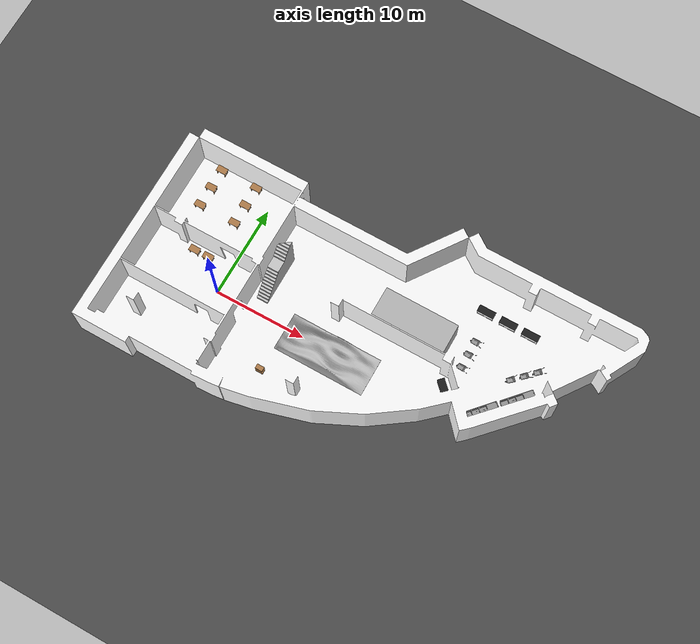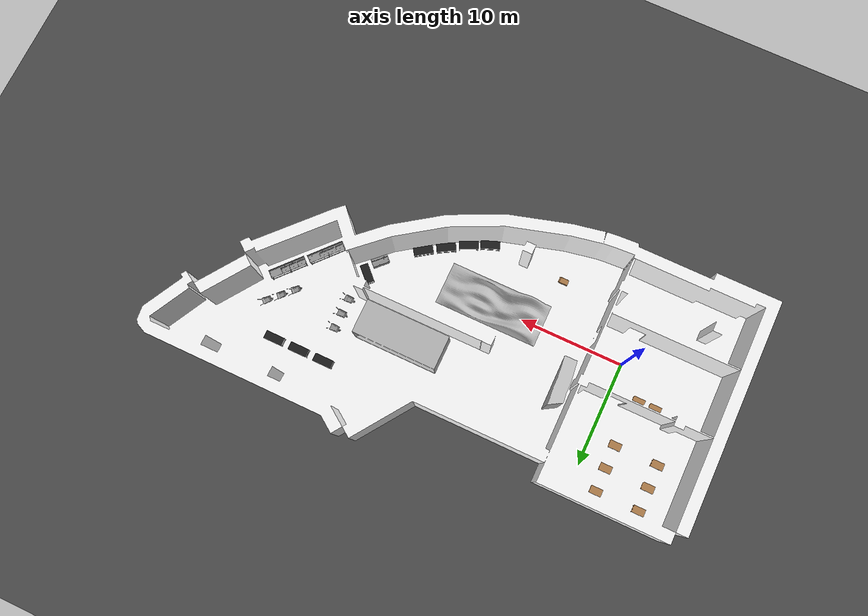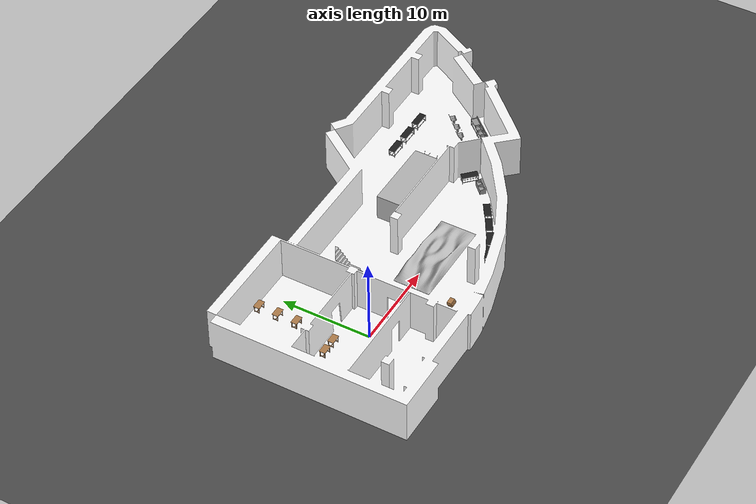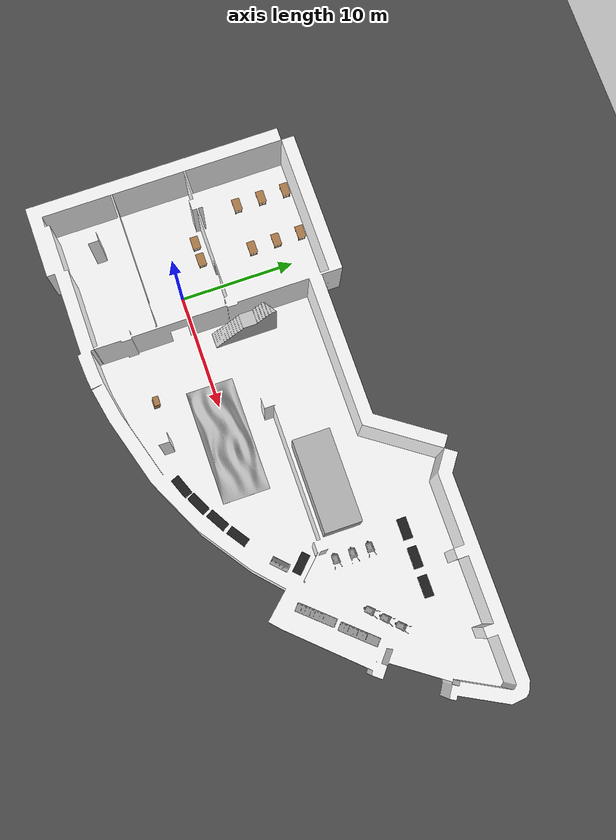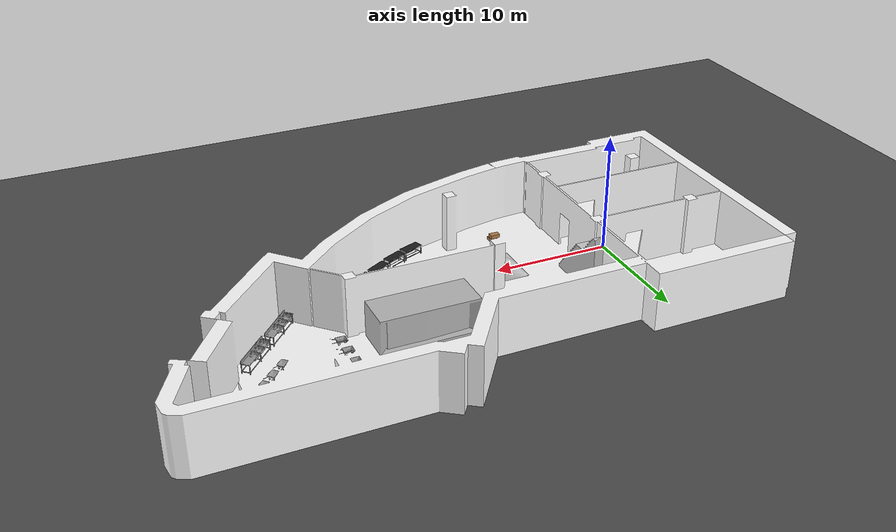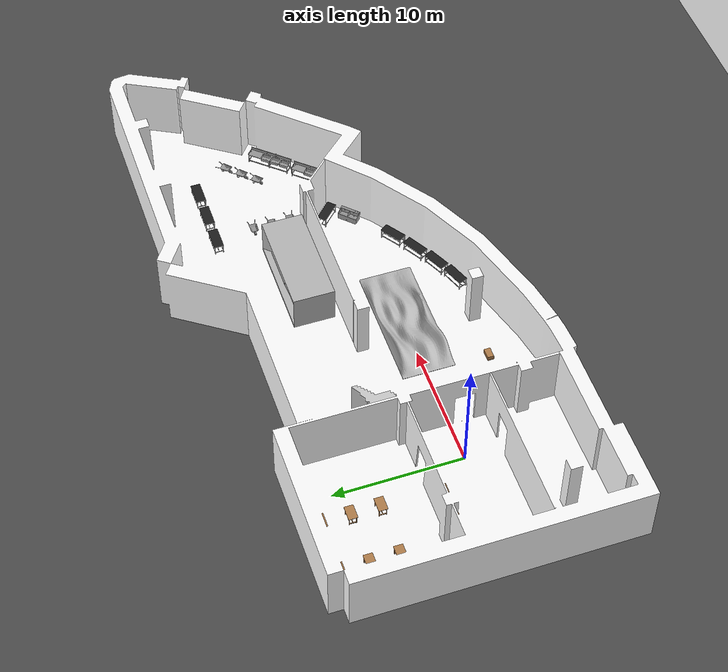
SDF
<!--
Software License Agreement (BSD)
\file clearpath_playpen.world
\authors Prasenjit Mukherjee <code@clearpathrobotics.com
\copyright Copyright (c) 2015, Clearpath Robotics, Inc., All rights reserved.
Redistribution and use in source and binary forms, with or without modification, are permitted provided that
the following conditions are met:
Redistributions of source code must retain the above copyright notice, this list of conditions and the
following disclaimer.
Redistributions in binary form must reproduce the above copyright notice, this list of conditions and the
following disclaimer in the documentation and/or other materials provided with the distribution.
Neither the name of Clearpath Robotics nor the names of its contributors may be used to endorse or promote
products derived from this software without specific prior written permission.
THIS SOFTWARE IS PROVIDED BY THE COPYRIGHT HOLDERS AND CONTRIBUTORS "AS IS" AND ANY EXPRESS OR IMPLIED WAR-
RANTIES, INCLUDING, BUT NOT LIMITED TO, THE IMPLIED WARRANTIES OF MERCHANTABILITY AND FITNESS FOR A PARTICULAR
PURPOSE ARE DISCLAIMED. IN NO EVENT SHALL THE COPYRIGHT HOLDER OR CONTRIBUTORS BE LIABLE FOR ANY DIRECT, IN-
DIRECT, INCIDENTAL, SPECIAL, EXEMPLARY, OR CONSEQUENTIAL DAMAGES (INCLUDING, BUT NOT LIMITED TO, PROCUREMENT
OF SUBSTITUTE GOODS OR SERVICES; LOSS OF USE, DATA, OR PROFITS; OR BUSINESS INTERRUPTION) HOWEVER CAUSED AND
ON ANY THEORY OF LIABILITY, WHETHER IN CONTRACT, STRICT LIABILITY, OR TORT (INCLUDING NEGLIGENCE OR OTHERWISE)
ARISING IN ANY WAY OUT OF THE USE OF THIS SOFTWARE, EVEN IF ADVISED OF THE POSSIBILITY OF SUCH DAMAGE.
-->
<sdf version="1.4">
 <world name="default">
  <light name="sun" type="directional">
   <pose>0 0 10 0 -0 0</pose>
   <diffuse>0.8 0.8 0.8 1</diffuse>
   <specular>0.2 0.2 0.2 1</specular>
   <attenuation>
    <range>10</range>
    <constant>0.9</constant>
    <linear>0.01</linear>
    <quadratic>0.001</quadratic>
   </attenuation>
   <direction>-0.5 0.1 -0.9</direction>
  </light>
  <model name="ground_plane">
   <static>1</static>
   <link name="link">
    <collision name="collision">
     <geometry><plane><normal>0 0 1</normal><size>100 100</size></plane></geometry>
     <surface><friction><ode><mu>100</mu><mu2>50</mu2></ode></friction></surface>
    </collision>
    <visual name="visual">
     <cast_shadows>0</cast_shadows>
     <geometry><plane><normal>0 0 1</normal><size>100 100</size></plane></geometry>
     <material>
      <script>
       <uri>model://asphalt_plane/materials/scripts</uri>
       <uri>model://asphalt_plane/materials/textures</uri>
       <name>vrc/asphalt</name>
      </script>
     </material>
    </visual>
    <velocity_decay><linear>0</linear><angular>0</angular></velocity_decay>
   </link>
  </model>
  <physics type="ode">
   <max_step_size>0.01</max_step_size>
   <real_time_factor>1</real_time_factor>
   <real_time_update_rate>100</real_time_update_rate>
   <gravity>0 0 -9.8</gravity>
  </physics>
  <scene><ambient>0.4 0.4 0.4 1</ambient><background>0.7 0.7 0.7 1</background><shadows>1</shadows></scene>
  <model name="stair">
   <include><static>true</static><uri>model://test_stair</uri><pose>3.8 1.4 0.05 0 0 -1.57</pose></include>
  </model>
  <model name="work_brench_01">
   <include><static>true</static><uri>model://work_brench</uri><pose>24 11.5 0.1 0 0 0</pose></include>
  </model>
  <model name="work_brench_02">
   <include><static>true</static><uri>model://work_brench</uri><pose>26.5 11.5 0.1 0 0 0</pose></include>
  </model>
  <model name="work_brench_03">
   <include><static>true</static><uri>model://work_brench</uri><pose>29 11.5 0.1 0 0 0</pose></include>
  </model>
  <model name="work_brench_04">
   <include><static>true</static><uri>model://work_brench</uri><pose>24.4 3 0.1 0 0 -0.78</pose></include>
  </model>
  <model name="work_brench_05">
   <include><static>true</static><uri>model://work_brench</uri><pose>20.13 -2.27 0.1 0 0 0.6</pose></include>
  </model>
  <model name="work_brench_06">
   <include><static>true</static><uri>model://work_brench</uri><pose>18.3 -3.37 0.1 0 0 0.52</pose></include>
  </model>
  <model name="work_brench_07">
   <include><static>true</static><uri>model://work_brench</uri><pose>16.47 -4.37 0.1 0 0 0.44</pose></include>
  </model>
  <model name="work_brench_08">
   <include><static>true</static><uri>model://work_brench</uri><pose>14.64 -5.17 0.1 0 0 0.36</pose></include>
  </model>
  <model name="wood_table_01">
   <include><static>true</static><uri>model://wood_table</uri><pose>-4.7 2.3 0.05 0 0 0</pose></include>
  </model>
  <model name="wood_table_02">
   <include><static>true</static><uri>model://wood_table</uri><pose>-3.1 2.3 0.05 0 0 0</pose></include>
  </model>
  <model name="wood_table_03">
   <include><static>true</static><uri>model://wood_table</uri><pose>-6.8 6.8 0.05 0 0 0</pose></include>
  </model>
  <model name="wood_table_04">
   <include><static>true</static><uri>model://wood_table</uri><pose>-6.8 9 0.05 0 0 0</pose></include>
  </model>
  <model name="wood_table_05">
   <include><static>true</static><uri>model://wood_table</uri><pose>-6.8 11.2 0.05 0 0 0</pose></include>
  </model>
  <model name="wood_table_06">
   <include><static>true</static><uri>model://wood_table</uri><pose>-2.7 6.8 0.05 0 0 0</pose></include>
  </model>
  <model name="wood_table_07">
   <include><static>true</static><uri>model://wood_table</uri><pose>-2.7 9 0.05 0 0 0</pose></include>
  </model>
  <model name="wood_table_08">
   <include><static>true</static><uri>model://wood_table</uri><pose>-2.7 11.2 0.05 0 0 0</pose></include>
  </model>
  <model name="wood_table_01">
   <include><static>true</static><uri>model://sink</uri><pose>30 3.4 0.1 0 0 -2.3</pose></include>
  </model>
  <model name="wood_table_02">
   <include><static>true</static><uri>model://sink</uri><pose>32.6 6.2 0.1 0 0 -2.3</pose></include>
  </model>
  <model name="sink_2">
   <include><static>true</static><uri>model://sink-2</uri><pose>24.6 1.3 0.05 0 0 -2.356</pose></include>
  </model>
  <model name="u005">
   <include><static>true</static><uri>model://u005</uri><pose>-10 -10 0.05 0 0 0</pose></include>
  </model>
  <model name="Wood_1">
   <include><static>true</static><uri>model://small_wood</uri><pose>8 -5 0.15 0 0 0</pose></include>
  </model>
  <model name="Wood_2">
   <include><static>true</static><uri>model://small_wood</uri><pose>7.9 -4.9 0.45 0 0 0</pose></include>
  </model>
  <model name="wheel_borrow_01">
   <include><static>true</static><uri>model://wheel_borrow</uri><pose>25 8 0.05 0 0 0</pose></include>
  </model>
  <model name="wheel_borrow_02">
   <include><static>true</static><uri>model://wheel_borrow</uri><pose>25 6.5 0.05 0 0 0</pose></include>
  </model>
  <model name="wheel_borrow_03">
   <include><static>true</static><uri>model://wheel_borrow</uri><pose>25 5 0.05 0 0 0</pose></include>
  </model>
  <model name="wheel_borrow_04">
   <include><static>true</static><uri>model://wheel_borrow</uri><pose>32 8 0.05 0 0 0.785</pose></include>
  </model>
  <model name="wheel_borrow_05">
   <include><static>true</static><uri>model://wheel_borrow</uri><pose>31 7 0.05 0 0 0.785</pose></include>
  </model>
  <model name="wheel_borrow_06">
   <include><static>true</static><uri>model://wheel_borrow</uri><pose>30 6 0.05 0 0 0.785</pose></include>
  </model>
  <model name="floor_feature">
   <include><static>true</static><uri>model://floor_feature</uri><pose>18 1.8 0.05 0 0 0</pose></include>
  </model>
  <model name="house">
   <include><static>true</static><uri>model://house</uri><pose>23.3 4.66 0.05 0 0 3.14</pose></include>
  </model>
 </world>
</sdf>

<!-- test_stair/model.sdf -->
<sdf version='1.6'>
  <model name='work_brench'>
<link name='link'>
      <self_collide>0</self_collide>
      <kinematic>0</kinematic>
      <visual name='link'>
        <geometry>
<mesh>
<uri>model://test_stair/meshes/test_stair.dae </uri>
<scale>1 1 1</scale>

</mesh>

        </geometry>

        <cast_shadows>1</cast_shadows>
        <transparency>0</transparency>
      </visual>
      <collision name='Wall_84_Collision'>
        <laser_retro>0</laser_retro>
        <max_contacts>10</max_contacts>
        <geometry>

<mesh>
<uri>model://test_stair/meshes/test_stair.dae </uri>
<scale>1 1 1</scale>
</mesh>

        </geometry>
        <surface>
          <friction>
            <ode>
              <mu>1</mu>
              <mu2>1</mu2>
              <fdir1>0 0 0</fdir1>
              <slip1>0</slip1>
              <slip2>0</slip2>
            </ode>
            <torsional>
              <coefficient>1</coefficient>
              <patch_radius>0</patch_radius>
              <surface_radius>0</surface_radius>
              <use_patch_radius>1</use_patch_radius>
              <ode>
                <slip>0</slip>
              </ode>
            </torsional>
          </friction>
          <bounce>
            <restitution_coefficient>0</restitution_coefficient>
            <threshold>1e+06</threshold>
          </bounce>
          <contact>
            <collide_without_contact>0</collide_without_contact>
            <collide_without_contact_bitmask>1</collide_without_contact_bitmask>
            <collide_bitmask>1</collide_bitmask>
            <ode>
              <soft_cfm>0</soft_cfm>
              <soft_erp>0.2</soft_erp>
              <kp>1e+13</kp>
              <kd>1</kd>
              <max_vel>0.01</max_vel>
              <min_depth>0</min_depth>
            </ode>
            <bullet><uri>model://stair/meshes/base_link.STL </uri>
<scale>1 1 1</scale>
              <split_impulse>1</split_impulse>
              <split_impulse_penetration_threshold>-0.01</split_impulse_penetration_threshold>
              <soft_cfm>0</soft_cfm>
              <soft_erp>0.2</soft_erp>
              <kp>1e+13</kp>
              <kd>1</kd>
            </bullet>
          </contact>
        </surface>
      </collision>
    </link>
</model>
</sdf>

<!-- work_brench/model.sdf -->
<sdf version='1.6'>
  <model name='work_brench'>
<link name='link'>
      <self_collide>0</self_collide>
      <kinematic>0</kinematic>
      <visual name='link'>
        <geometry>
<mesh>
<uri>model://work_brench/meshes/base_link.STL </uri>
<scale>1 1 1</scale>

</mesh>

        </geometry>
        <material>
          <script>

            <uri>file://media/materials/scripts/gazebo.material</uri>
            <name>Gazebo/Black</name>

          </script>

        </material>

        <cast_shadows>1</cast_shadows>
        <transparency>0</transparency>
      </visual>
      <collision name='Wall_84_Collision'>
        <laser_retro>0</laser_retro>
        <max_contacts>10</max_contacts>
        <geometry>

<mesh>
<uri>model://work_brench/meshes/base_link.STL </uri>
<scale>1 1 1</scale>
</mesh>

        </geometry>
        <surface>
          <friction>
            <ode>
              <mu>1</mu>
              <mu2>1</mu2>
              <fdir1>0 0 0</fdir1>
              <slip1>0</slip1>
              <slip2>0</slip2>
            </ode>
            <torsional>
              <coefficient>1</coefficient>
              <patch_radius>0</patch_radius>
              <surface_radius>0</surface_radius>
              <use_patch_radius>1</use_patch_radius>
              <ode>
                <slip>0</slip>
              </ode>
            </torsional>
          </friction>
          <bounce>
            <restitution_coefficient>0</restitution_coefficient>
            <threshold>1e+06</threshold>
          </bounce>
          <contact>
            <collide_without_contact>0</collide_without_contact>
            <collide_without_contact_bitmask>1</collide_without_contact_bitmask>
            <collide_bitmask>1</collide_bitmask>
            <ode>
              <soft_cfm>0</soft_cfm>
              <soft_erp>0.2</soft_erp>
              <kp>1e+13</kp>
              <kd>1</kd>
              <max_vel>0.01</max_vel>
              <min_depth>0</min_depth>
            </ode>
            <bullet><uri>model://stair/meshes/base_link.STL </uri>
<scale>1 1 1</scale>
              <split_impulse>1</split_impulse>
              <split_impulse_penetration_threshold>-0.01</split_impulse_penetration_threshold>
              <soft_cfm>0</soft_cfm>
              <soft_erp>0.2</soft_erp>
              <kp>1e+13</kp>
              <kd>1</kd>
            </bullet>
          </contact>
        </surface>
      </collision>
    </link>
</model>
</sdf>

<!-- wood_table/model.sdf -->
<sdf version='1.6'>
  <model name='wood_table'>
<link name='link'>
      <self_collide>0</self_collide>
      <kinematic>0</kinematic>
      <visual name='link'>
        <geometry>
<mesh>
<uri>model://wood_table/meshes/base_link.STL </uri>
<scale> 1 1 1 </scale>

</mesh>

        </geometry>
        <material>
          <script>

            <uri>file://media/materials/scripts/gazebo.material</uri>
            <name>Gazebo/Wood</name>

          </script>

        </material>
        <cast_shadows>1</cast_shadows>
        <transparency>0</transparency>
      </visual>
      <collision name='Wall_84_Collision'>
        <laser_retro>0</laser_retro>
        <max_contacts>10</max_contacts>
        <geometry>

<mesh>
<uri>model://wood_table/meshes/base_link.STL </uri>
<scale> 1 1 1 </scale>
</mesh>

        </geometry>
        <surface>
          <friction>
            <ode>
              <mu>1</mu>
              <mu2>1</mu2>
              <fdir1>0 0 0</fdir1>
              <slip1>0</slip1>
              <slip2>0</slip2>
            </ode>
            <torsional>
              <coefficient>1</coefficient>
              <patch_radius>0</patch_radius>
              <surface_radius>0</surface_radius>
              <use_patch_radius>1</use_patch_radius>
              <ode>
                <slip>0</slip>
              </ode>
            </torsional>
          </friction>
          <bounce>
            <restitution_coefficient>0</restitution_coefficient>
            <threshold>1e+06</threshold>
          </bounce>
          <contact>
            <collide_without_contact>0</collide_without_contact>
            <collide_without_contact_bitmask>1</collide_without_contact_bitmask>
            <collide_bitmask>1</collide_bitmask>
            <ode>
              <soft_cfm>0</soft_cfm>
              <soft_erp>0.2</soft_erp>
              <kp>1e+13</kp>
              <kd>1</kd>
              <max_vel>0.01</max_vel>
              <min_depth>0</min_depth>
            </ode>
            <bullet>
              <split_impulse>1</split_impulse>
              <split_impulse_penetration_threshold>-0.01</split_impulse_penetration_threshold>
              <soft_cfm>0</soft_cfm>
              <soft_erp>0.2</soft_erp>
              <kp>1e+13</kp>
              <kd>1</kd>
            </bullet>
          </contact>
        </surface>
      </collision>
    </link>
</model>
</sdf>

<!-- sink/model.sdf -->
<sdf version='1.6'>
  <model name='sink'>
<link name='link'>
      <self_collide>0</self_collide>
      <kinematic>0</kinematic>
      <visual name='link'>
        <geometry>
<mesh>
<uri>model://sink/meshes/base_link.STL </uri>
<scale>1 1 1</scale>

</mesh>

        </geometry>
        <material>
          <script>

            <uri>file://media/materials/scripts/gazebo.material</uri>
            <name> Gazebo/Grey</name>
          </script>

        </material>
        <cast_shadows>1</cast_shadows>
        <transparency>0</transparency>
      </visual>
      <collision name='Wall_84_Collision'>
        <laser_retro>0</laser_retro>
        <max_contacts>10</max_contacts>
        <geometry>

<mesh>
<uri>model://sink/meshes/base_link.STL </uri>
<scale>1 1 1</scale>
</mesh>

        </geometry>
        <surface>
          <friction>
            <ode>
              <mu>1</mu>
              <mu2>1</mu2>
              <fdir1>0 0 0</fdir1>
              <slip1>0</slip1>
              <slip2>0</slip2>
            </ode>
            <torsional>
              <coefficient>1</coefficient>
              <patch_radius>0</patch_radius>
              <surface_radius>0</surface_radius>
              <use_patch_radius>1</use_patch_radius>
              <ode>
                <slip>0</slip>
              </ode>
            </torsional>
          </friction>
          <bounce>
            <restitution_coefficient>0</restitution_coefficient>
            <threshold>1e+06</threshold>
          </bounce>
          <contact>
            <collide_without_contact>0</collide_without_contact>
            <collide_without_contact_bitmask>1</collide_without_contact_bitmask>
            <collide_bitmask>1</collide_bitmask>
            <ode>
              <soft_cfm>0</soft_cfm>
              <soft_erp>0.2</soft_erp>
              <kp>1e+13</kp>
              <kd>1</kd>
              <max_vel>0.01</max_vel>
              <min_depth>0</min_depth>
            </ode>
            <bullet><uri>model://stair/meshes/base_link.STL </uri>
<scale>1 1 1</scale>
              <split_impulse>1</split_impulse>
              <split_impulse_penetration_threshold>-0.01</split_impulse_penetration_threshold>
              <soft_cfm>0</soft_cfm>
              <soft_erp>0.2</soft_erp>
              <kp>1e+13</kp>
              <kd>1</kd>
            </bullet>
          </contact>
        </surface>
      </collision>
    </link>
</model>
</sdf>

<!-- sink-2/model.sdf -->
<sdf version='1.6'>
  <model name='sink-2'>
<link name='link'>
      <self_collide>0</self_collide>
      <kinematic>0</kinematic>
      <visual name='link'>
        <geometry>
<mesh>
<uri>model://sink-2/meshes/base_link.STL </uri>
<scale>1 1 1</scale>

</mesh>

        </geometry>
        <material>
          <script>

            <uri>file://media/materials/scripts/gazebo.material</uri>
            <name>Gazebo/Grey</name>

          </script>

        </material>

        <cast_shadows>1</cast_shadows>
        <transparency>0</transparency>
      </visual>
      <collision name='Wall_84_Collision'>
        <laser_retro>0</laser_retro>
        <max_contacts>10</max_contacts>
        <geometry>

<mesh>
<uri>model://sink-2/meshes/base_link.STL </uri>
<scale>1 1 1</scale>
</mesh>

        </geometry>
        <surface>
          <friction>
            <ode>
              <mu>1</mu>
              <mu2>1</mu2>
              <fdir1>0 0 0</fdir1>
              <slip1>0</slip1>
              <slip2>0</slip2>
            </ode>
            <torsional>
              <coefficient>1</coefficient>
              <patch_radius>0</patch_radius>
              <surface_radius>0</surface_radius>
              <use_patch_radius>1</use_patch_radius>
              <ode>
                <slip>0</slip>
              </ode>
            </torsional>
          </friction>
          <bounce>
            <restitution_coefficient>0</restitution_coefficient>
            <threshold>1e+06</threshold>
          </bounce>
          <contact>
            <collide_without_contact>0</collide_without_contact>
            <collide_without_contact_bitmask>1</collide_without_contact_bitmask>
            <collide_bitmask>1</collide_bitmask>
            <ode>
              <soft_cfm>0</soft_cfm>
              <soft_erp>0.2</soft_erp>
              <kp>1e+13</kp>
              <kd>1</kd>
              <max_vel>0.01</max_vel>
              <min_depth>0</min_depth>
            </ode>
            <bullet><uri>model://stair/meshes/base_link.STL </uri>
<scale>1 1 1</scale>
              <split_impulse>1</split_impulse>
              <split_impulse_penetration_threshold>-0.01</split_impulse_penetration_threshold>
              <soft_cfm>0</soft_cfm>
              <soft_erp>0.2</soft_erp>
              <kp>1e+13</kp>
              <kd>1</kd>
            </bullet>
          </contact>
        </surface>
      </collision>
    </link>
</model>
</sdf>

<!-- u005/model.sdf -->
<sdf version='1.6'>
  <model name='u005'>
<link name='link'>
      <self_collide>0</self_collide>
      <kinematic>0</kinematic>
      <visual name='link'>
        <geometry>
<mesh>
<uri>model://u005/meshes/base_link.STL </uri>
<scale>1 1 1</scale>

</mesh>

        </geometry>
        <material>
          <script>

            <uri>file://media/materials/scripts/construction.material</uri>
		<name> stainless </name>

          </script>
          <ambient>1 1 1 1</ambient>
          <diffuse>1 1 1 1</diffuse>
          <specular>0.2 0.2 0.2 1</specular>
          <emissive>0 0 0 1</emissive>
        </material>
        <cast_shadows>1</cast_shadows>
        <transparency>0</transparency>
      </visual>
      <collision name='Wall_84_Collision'>
        <laser_retro>0</laser_retro>
        <max_contacts>10</max_contacts>
        <geometry>

<mesh>
<uri>model://u005/meshes/base_link.STL </uri>
<scale>1 1 1</scale>
</mesh>

        </geometry>
        <surface>
          <friction>
            <ode>
              <mu>1</mu>
              <mu2>1</mu2>
              <fdir1>0 0 0</fdir1>
              <slip1>0</slip1>
              <slip2>0</slip2>
            </ode>
            <torsional>
              <coefficient>1</coefficient>
              <patch_radius>0</patch_radius>
              <surface_radius>0</surface_radius>
              <use_patch_radius>1</use_patch_radius>
              <ode>
                <slip>0</slip>
              </ode>
            </torsional>
          </friction>
          <bounce>
            <restitution_coefficient>0</restitution_coefficient>
            <threshold>1e+06</threshold>
          </bounce>
          <contact>
            <collide_without_contact>0</collide_without_contact>
            <collide_without_contact_bitmask>1</collide_without_contact_bitmask>
            <collide_bitmask>1</collide_bitmask>
            <ode>
              <soft_cfm>0</soft_cfm>
              <soft_erp>0.2</soft_erp>
              <kp>1e+13</kp>
              <kd>1</kd>
              <max_vel>0.01</max_vel>
              <min_depth>0</min_depth>
            </ode>
            <bullet><uri>model://stair/meshes/base_link.STL </uri>
<scale>1 1 1</scale>
              <split_impulse>1</split_impulse>
              <split_impulse_penetration_threshold>-0.01</split_impulse_penetration_threshold>
              <soft_cfm>0</soft_cfm>
              <soft_erp>0.2</soft_erp>
              <kp>1e+13</kp>
              <kd>1</kd>
            </bullet>
          </contact>
        </surface>
      </collision>
    </link>
</model>
</sdf>

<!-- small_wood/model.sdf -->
<sdf version='1.6'>
  <model name='small_wood'>
<link name='Wall_84'>
      <self_collide>0</self_collide>
      <kinematic>0</kinematic>
      <visual name='Wall_84_Visual'>
        <geometry>
          <box>
            <size>0.8 0.5 0.3</size>
          </box>
        </geometry>
        <material>
          <script>

            <uri>file://media/materials/scripts/gazebo.material</uri>
            <name>Gazebo/Wood</name>

          </script>
          <ambient>1 1 1 1</ambient>
          <diffuse>1 1 1 1</diffuse>
          <specular>0.2 0.2 0.2 1</specular>
          <emissive>0 0 0 1</emissive>
        </material>
        <cast_shadows>1</cast_shadows>
        <transparency>0</transparency>
      </visual>
      <collision name='Wall_84_Collision'>
        <laser_retro>0</laser_retro>
        <max_contacts>10</max_contacts>
        <geometry>
          <box>
            <size>0.8 0.5 0.3</size>
          </box>
        </geometry>
        <surface>
          <friction>
            <ode>
              <mu>1</mu>
              <mu2>1</mu2>
              <fdir1>0 0 0</fdir1>
              <slip1>0</slip1>
              <slip2>0</slip2>
            </ode>
            <torsional>
              <coefficient>1</coefficient>
              <patch_radius>0</patch_radius>
              <surface_radius>0</surface_radius>
              <use_patch_radius>1</use_patch_radius>
              <ode>
                <slip>0</slip>
              </ode>
            </torsional>
          </friction>
          <bounce>
            <restitution_coefficient>0</restitution_coefficient>
            <threshold>1e+06</threshold>
          </bounce>
          <contact>
            <collide_without_contact>0</collide_without_contact>
            <collide_without_contact_bitmask>1</collide_without_contact_bitmask>
            <collide_bitmask>1</collide_bitmask>
            <ode>
              <soft_cfm>0</soft_cfm>
              <soft_erp>0.2</soft_erp>
              <kp>1e+13</kp>
              <kd>1</kd>
              <max_vel>0.01</max_vel>
              <min_depth>0</min_depth>
            </ode>
            <bullet>
              <split_impulse>1</split_impulse>
              <split_impulse_penetration_threshold>-0.01</split_impulse_penetration_threshold>
              <soft_cfm>0</soft_cfm>
              <soft_erp>0.2</soft_erp>
              <kp>1e+13</kp>
              <kd>1</kd>
            </bullet>
          </contact>
        </surface>
      </collision>
    </link>
</model>
</sdf>

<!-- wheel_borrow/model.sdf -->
<sdf version='1.6'>
  <model name='wheel_borrow'>
<link name='link'>
      <self_collide>0</self_collide>
      <kinematic>0</kinematic>
      <visual name='link'>
        <geometry>
<mesh>
<uri>model://wheel_borrow/meshes/base_link.STL </uri>
<scale> 5 5 5 </scale>

</mesh>

        </geometry>
        <material>
          <script>

            <uri>file://media/materials/scripts/gazebo.material</uri>
            <name>Gazebo/Grey</name>

          </script>

        </material>
        <cast_shadows>1</cast_shadows>
        <transparency>0</transparency>
      </visual>
      <collision name='Wall_84_Collision'>
        <laser_retro>0</laser_retro>
        <max_contacts>10</max_contacts>
        <geometry>

<mesh>
<uri>model://wheel_borrow/meshes/base_link.STL </uri>
<scale> 5 5 5 </scale>
</mesh>

        </geometry>
        <surface>
          <friction>
            <ode>
              <mu>1</mu>
              <mu2>1</mu2>
              <fdir1>0 0 0</fdir1>
              <slip1>0</slip1>
              <slip2>0</slip2>
            </ode>
            <torsional>
              <coefficient>1</coefficient>
              <patch_radius>0</patch_radius>
              <surface_radius>0</surface_radius>
              <use_patch_radius>1</use_patch_radius>
              <ode>
                <slip>0</slip>
              </ode>
            </torsional>
          </friction>
          <bounce>
            <restitution_coefficient>0</restitution_coefficient>
            <threshold>1e+06</threshold>
          </bounce>
          <contact>
            <collide_without_contact>0</collide_without_contact>
            <collide_without_contact_bitmask>1</collide_without_contact_bitmask>
            <collide_bitmask>1</collide_bitmask>
            <ode>
              <soft_cfm>0</soft_cfm>
              <soft_erp>0.2</soft_erp>
              <kp>1e+13</kp>
              <kd>1</kd>
              <max_vel>0.01</max_vel>
              <min_depth>0</min_depth>
            </ode>
            <bullet>
              <split_impulse>1</split_impulse>
              <split_impulse_penetration_threshold>-0.01</split_impulse_penetration_threshold>
              <soft_cfm>0</soft_cfm>
              <soft_erp>0.2</soft_erp>
              <kp>1e+13</kp>
              <kd>1</kd>
            </bullet>
          </contact>
        </surface>
      </collision>
    </link>
</model>
</sdf>

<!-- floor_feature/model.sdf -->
<sdf version='1.6'>
  <model name='work_brench'>
<link name='link'>
      <self_collide>0</self_collide>
      <kinematic>0</kinematic>
      <visual name='link'>
        <geometry>
<mesh>
<uri>model://floor_feature/meshes/floor_feature.dae </uri>
<scale>20 35 30</scale>

</mesh>

        </geometry>

        <cast_shadows>1</cast_shadows>
        <transparency>0</transparency>
      </visual>
      <collision name='Wall_84_Collision'>
        <laser_retro>0</laser_retro>
        <max_contacts>10</max_contacts>
        <geometry>

<mesh>
<uri>model://floor_feature/meshes/floor_feature.dae</uri>
<scale>20 35 30</scale>
</mesh>

        </geometry>
        <surface>
          <friction>
            <ode>
              <mu>1</mu>
              <mu2>1</mu2>
              <fdir1>0 0 0</fdir1>
              <slip1>0</slip1>
              <slip2>0</slip2>
            </ode>
            <torsional>
              <coefficient>1</coefficient>
              <patch_radius>0</patch_radius>
              <surface_radius>0</surface_radius>
              <use_patch_radius>1</use_patch_radius>
              <ode>
                <slip>0</slip>
              </ode>
            </torsional>
          </friction>
          <bounce>
            <restitution_coefficient>0</restitution_coefficient>
            <threshold>1e+06</threshold>
          </bounce>
          <contact>
            <collide_without_contact>0</collide_without_contact>
            <collide_without_contact_bitmask>1</collide_without_contact_bitmask>
            <collide_bitmask>1</collide_bitmask>
            <ode>
              <soft_cfm>0</soft_cfm>
              <soft_erp>0.2</soft_erp>
              <kp>1e+13</kp>
              <kd>1</kd>
              <max_vel>0.01</max_vel>
              <min_depth>0</min_depth>
            </ode>
            <bullet><uri>model://stair/meshes/base_link.STL <scale> 50 50 50 </scale></uri>
<scale>1 1 1</scale>
              <split_impulse>1</split_impulse>
              <split_impulse_penetration_threshold>-0.01</split_impulse_penetration_threshold>
              <soft_cfm>0</soft_cfm>
              <soft_erp>0.2</soft_erp>
              <kp>1e+13</kp>
              <kd>1</kd>
            </bullet>
          </contact>
        </surface>
      </collision>
    </link>
</model>
</sdf>

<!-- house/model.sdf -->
<sdf version='1.6'>
  <model name='house'>
<link name='link'>
      <self_collide>0</self_collide>
      <kinematic>0</kinematic>
      <visual name='link'>
        <geometry>
<mesh>
<uri>model://house/meshes/house.dae </uri>
<scale>1 1 1</scale>

</mesh>

        </geometry>

        <cast_shadows>1</cast_shadows>
        <transparency>0</transparency>
      </visual>
      <collision name='Wall_84_Collision'>
        <laser_retro>0</laser_retro>
        <max_contacts>10</max_contacts>
        <geometry>

<mesh>
<uri>model://house/meshes/house.dae</uri>
<scale>1 1 1</scale>
</mesh>

        </geometry>
        <surface>
          <friction>
            <ode>
              <mu>1</mu>
              <mu2>1</mu2>
              <fdir1>0 0 0</fdir1>
              <slip1>0</slip1>
              <slip2>0</slip2>
            </ode>
            <torsional>
              <coefficient>1</coefficient>
              <patch_radius>0</patch_radius>
              <surface_radius>0</surface_radius>
              <use_patch_radius>1</use_patch_radius>
              <ode>
                <slip>0</slip>
              </ode>
            </torsional>
          </friction>
          <bounce>
            <restitution_coefficient>0</restitution_coefficient>
            <threshold>1e+06</threshold>
          </bounce>
          <contact>
            <collide_without_contact>0</collide_without_contact>
            <collide_without_contact_bitmask>1</collide_without_contact_bitmask>
            <collide_bitmask>1</collide_bitmask>
            <ode>
              <soft_cfm>0</soft_cfm>
              <soft_erp>0.2</soft_erp>
              <kp>1e+13</kp>
              <kd>1</kd>
              <max_vel>0.01</max_vel>
              <min_depth>0</min_depth>
            </ode>
            <bullet><uri>model://stair/meshes/base_link.STL <scale> 50 50 50 </scale></uri>
<scale>1 1 1</scale>
              <split_impulse>1</split_impulse>
              <split_impulse_penetration_threshold>-0.01</split_impulse_penetration_threshold>
              <soft_cfm>0</soft_cfm>
              <soft_erp>0.2</soft_erp>
              <kp>1e+13</kp>
              <kd>1</kd>
            </bullet>
          </contact>
        </surface>
      </collision>
    </link>
</model>
</sdf>
